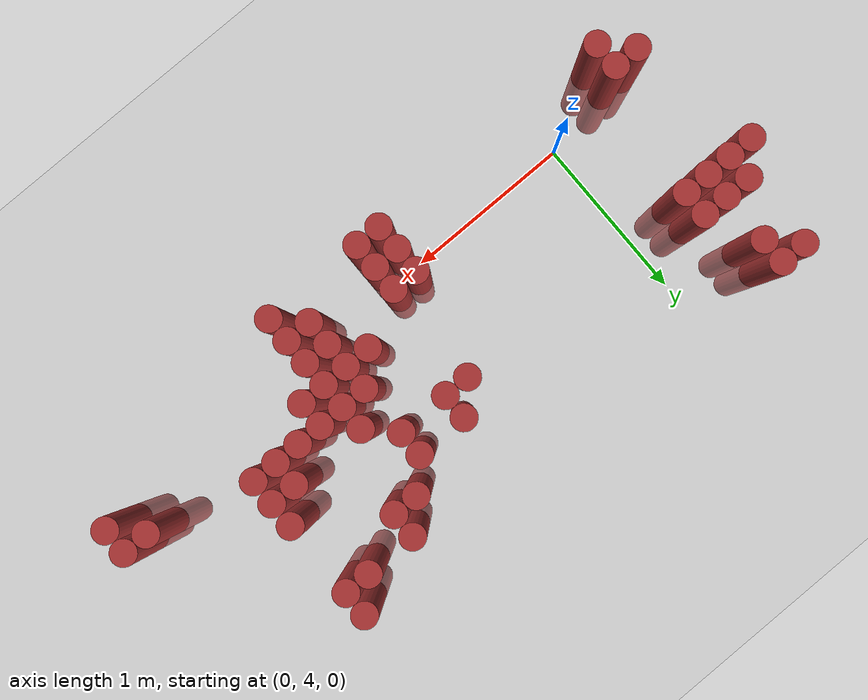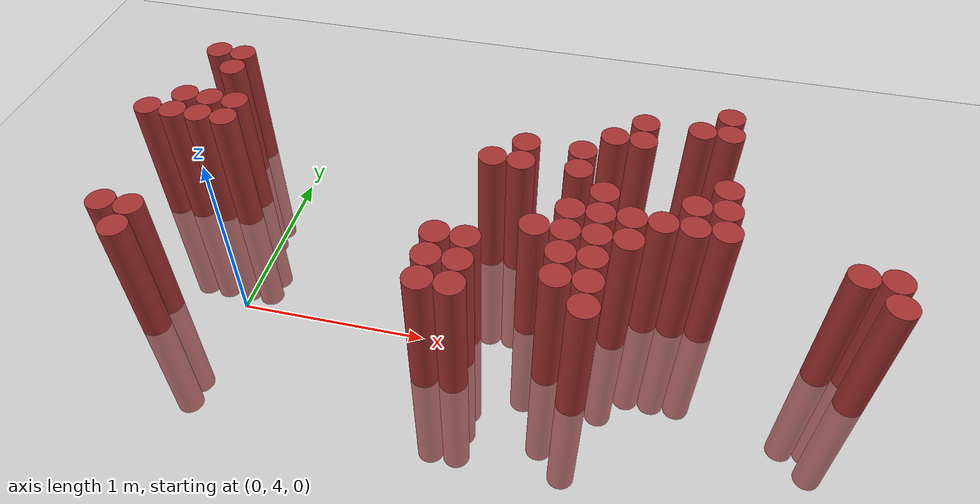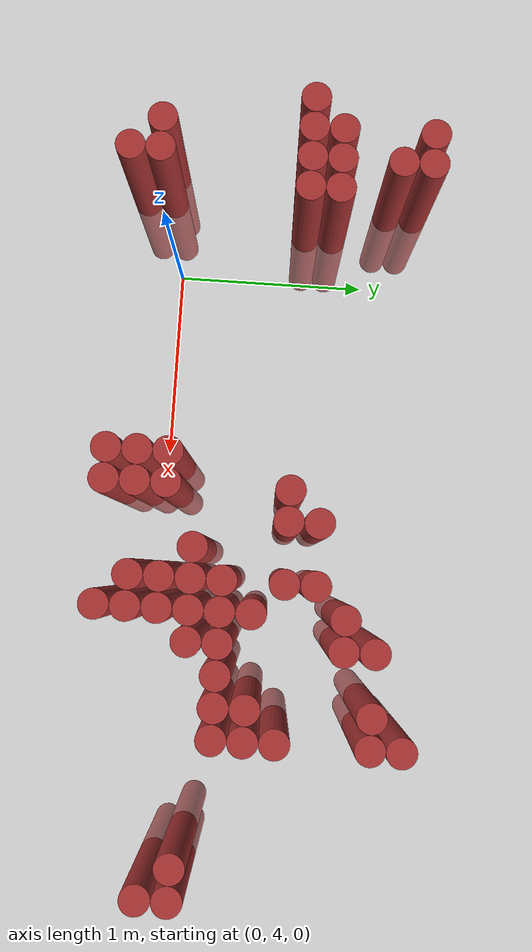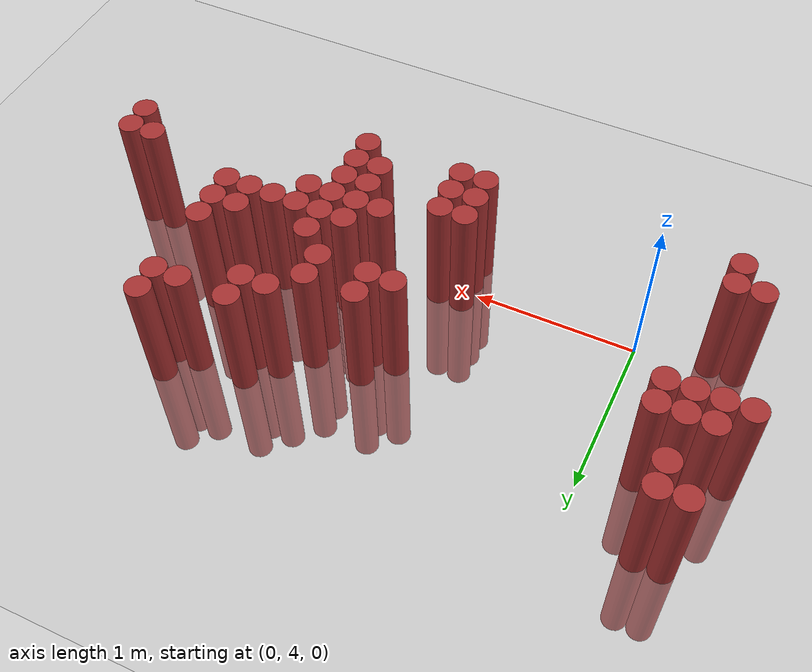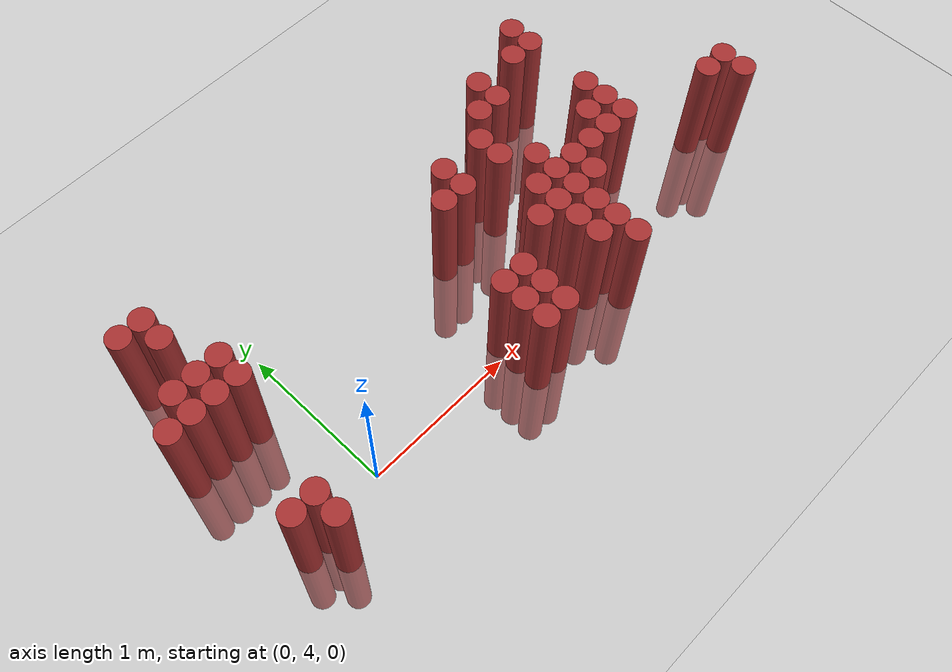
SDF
<sdf version="1.6">
 <world name="default">
  <model name="ground_plane">
   <static>1</static>
   <link name="link">
    <collision name="collision">
     <geometry><plane><normal>0 0 1</normal><size>100 100</size></plane></geometry>
     <surface><friction><ode><mu>100</mu><mu2>50</mu2></ode></friction></surface>
    </collision>
    <visual name="visual">
     <cast_shadows>0</cast_shadows>
     <geometry><plane><normal>0 0 1</normal><size>100 100</size></plane></geometry>
     <material>
      <script><uri>file://media/materials/scripts/gazebo.material</uri><name>Gazebo/Grey</name></script>
     </material>
    </visual>
   </link>
  </model>
  <model name="unit_cylinder_448">
   <static>1</static>
   <pose>-0.725000 4.675000 0.000000 0.000000 0.000000 0.000000</pose>
   <link name="link">
    <inertial>
     <mass>1</mass>
     <inertia><ixx>0.145833</ixx><ixy>0</ixy><ixz>0</ixz><iyy>0.145833</iyy><iyz>0</iyz><izz>0.125</izz></inertia>
    </inertial>
    <collision name="collision">
     <geometry><cylinder><radius>0.075000</radius><length>1.5</length></cylinder></geometry>
    </collision>
    <visual name="visual">
     <geometry><cylinder><radius>0.075000</radius><length>1.5</length></cylinder></geometry>
     <material>
      <ambient>0.648000 0.192000 0.192000 1</ambient>
      <diffuse>0.648000 0.192000 0.192000 1</diffuse>
     </material>
     <material>
      <script><name>Gazebo/Grey</name><uri>file://media/materials/scripts/gazebo.material</uri></script>
     </material>
    </visual>
   </link>
  </model>
  <model name="unit_cylinder_450">
   <static>1</static>
   <pose>-0.575000 3.925000 0.000000 0.000000 0.000000 0.000000</pose>
   <link name="link">
    <inertial>
     <mass>1</mass>
     <inertia><ixx>0.145833</ixx><ixy>0</ixy><ixz>0</ixz><iyy>0.145833</iyy><iyz>0</iyz><izz>0.125</izz></inertia>
    </inertial>
    <collision name="collision">
     <geometry><cylinder><radius>0.075000</radius><length>1.5</length></cylinder></geometry>
    </collision>
    <visual name="visual">
     <geometry><cylinder><radius>0.075000</radius><length>1.5</length></cylinder></geometry>
     <material>
      <ambient>0.648000 0.192000 0.192000 1</ambient>
      <diffuse>0.648000 0.192000 0.192000 1</diffuse>
     </material>
     <material>
      <script><name>Gazebo/Grey</name><uri>file://media/materials/scripts/gazebo.material</uri></script>
     </material>
    </visual>
   </link>
  </model>
  <model name="unit_cylinder_451">
   <static>1</static>
   <pose>-0.575000 4.675000 0.000000 0.000000 0.000000 0.000000</pose>
   <link name="link">
    <inertial>
     <mass>1</mass>
     <inertia><ixx>0.145833</ixx><ixy>0</ixy><ixz>0</ixz><iyy>0.145833</iyy><iyz>0</iyz><izz>0.125</izz></inertia>
    </inertial>
    <collision name="collision">
     <geometry><cylinder><radius>0.075000</radius><length>1.5</length></cylinder></geometry>
    </collision>
    <visual name="visual">
     <geometry><cylinder><radius>0.075000</radius><length>1.5</length></cylinder></geometry>
     <material>
      <ambient>0.648000 0.192000 0.192000 1</ambient>
      <diffuse>0.648000 0.192000 0.192000 1</diffuse>
     </material>
     <material>
      <script><name>Gazebo/Grey</name><uri>file://media/materials/scripts/gazebo.material</uri></script>
     </material>
    </visual>
   </link>
  </model>
  <model name="unit_cylinder_452">
   <static>1</static>
   <pose>-0.575000 4.825000 0.000000 0.000000 0.000000 0.000000</pose>
   <link name="link">
    <inertial>
     <mass>1</mass>
     <inertia><ixx>0.145833</ixx><ixy>0</ixy><ixz>0</ixz><iyy>0.145833</iyy><iyz>0</iyz><izz>0.125</izz></inertia>
    </inertial>
    <collision name="collision">
     <geometry><cylinder><radius>0.075000</radius><length>1.5</length></cylinder></geometry>
    </collision>
    <visual name="visual">
     <geometry><cylinder><radius>0.075000</radius><length>1.5</length></cylinder></geometry>
     <material>
      <ambient>0.648000 0.192000 0.192000 1</ambient>
      <diffuse>0.648000 0.192000 0.192000 1</diffuse>
     </material>
     <material>
      <script><name>Gazebo/Grey</name><uri>file://media/materials/scripts/gazebo.material</uri></script>
     </material>
    </visual>
   </link>
  </model>
  <model name="unit_cylinder_453">
   <static>1</static>
   <pose>-0.575000 5.275000 0.000000 0.000000 0.000000 0.000000</pose>
   <link name="link">
    <inertial>
     <mass>1</mass>
     <inertia><ixx>0.145833</ixx><ixy>0</ixy><ixz>0</ixz><iyy>0.145833</iyy><iyz>0</iyz><izz>0.125</izz></inertia>
    </inertial>
    <collision name="collision">
     <geometry><cylinder><radius>0.075000</radius><length>1.5</length></cylinder></geometry>
    </collision>
    <visual name="visual">
     <geometry><cylinder><radius>0.075000</radius><length>1.5</length></cylinder></geometry>
     <material>
      <ambient>0.648000 0.192000 0.192000 1</ambient>
      <diffuse>0.648000 0.192000 0.192000 1</diffuse>
     </material>
     <material>
      <script><name>Gazebo/Grey</name><uri>file://media/materials/scripts/gazebo.material</uri></script>
     </material>
    </visual>
   </link>
  </model>
  <model name="unit_cylinder_454">
   <static>1</static>
   <pose>-0.425000 3.775000 0.000000 0.000000 0.000000 0.000000</pose>
   <link name="link">
    <inertial>
     <mass>1</mass>
     <inertia><ixx>0.145833</ixx><ixy>0</ixy><ixz>0</ixz><iyy>0.145833</iyy><iyz>0</iyz><izz>0.125</izz></inertia>
    </inertial>
    <collision name="collision">
     <geometry><cylinder><radius>0.075000</radius><length>1.5</length></cylinder></geometry>
    </collision>
    <visual name="visual">
     <geometry><cylinder><radius>0.075000</radius><length>1.5</length></cylinder></geometry>
     <material>
      <ambient>0.648000 0.192000 0.192000 1</ambient>
      <diffuse>0.648000 0.192000 0.192000 1</diffuse>
     </material>
     <material>
      <script><name>Gazebo/Grey</name><uri>file://media/materials/scripts/gazebo.material</uri></script>
     </material>
    </visual>
   </link>
  </model>
  <model name="unit_cylinder_455">
   <static>1</static>
   <pose>-0.425000 3.925000 0.000000 0.000000 0.000000 0.000000</pose>
   <link name="link">
    <inertial>
     <mass>1</mass>
     <inertia><ixx>0.145833</ixx><ixy>0</ixy><ixz>0</ixz><iyy>0.145833</iyy><iyz>0</iyz><izz>0.125</izz></inertia>
    </inertial>
    <collision name="collision">
     <geometry><cylinder><radius>0.075000</radius><length>1.5</length></cylinder></geometry>
    </collision>
    <visual name="visual">
     <geometry><cylinder><radius>0.075000</radius><length>1.5</length></cylinder></geometry>
     <material>
      <ambient>0.648000 0.192000 0.192000 1</ambient>
      <diffuse>0.648000 0.192000 0.192000 1</diffuse>
     </material>
     <material>
      <script><name>Gazebo/Grey</name><uri>file://media/materials/scripts/gazebo.material</uri></script>
     </material>
    </visual>
   </link>
  </model>
  <model name="unit_cylinder_456">
   <static>1</static>
   <pose>-0.425000 4.675000 0.000000 0.000000 0.000000 0.000000</pose>
   <link name="link">
    <inertial>
     <mass>1</mass>
     <inertia><ixx>0.145833</ixx><ixy>0</ixy><ixz>0</ixz><iyy>0.145833</iyy><iyz>0</iyz><izz>0.125</izz></inertia>
    </inertial>
    <collision name="collision">
     <geometry><cylinder><radius>0.075000</radius><length>1.5</length></cylinder></geometry>
    </collision>
    <visual name="visual">
     <geometry><cylinder><radius>0.075000</radius><length>1.5</length></cylinder></geometry>
     <material>
      <ambient>0.648000 0.192000 0.192000 1</ambient>
      <diffuse>0.648000 0.192000 0.192000 1</diffuse>
     </material>
     <material>
      <script><name>Gazebo/Grey</name><uri>file://media/materials/scripts/gazebo.material</uri></script>
     </material>
    </visual>
   </link>
  </model>
  <model name="unit_cylinder_457">
   <static>1</static>
   <pose>-0.425000 4.825000 0.000000 0.000000 0.000000 0.000000</pose>
   <link name="link">
    <inertial>
     <mass>1</mass>
     <inertia><ixx>0.145833</ixx><ixy>0</ixy><ixz>0</ixz><iyy>0.145833</iyy><iyz>0</iyz><izz>0.125</izz></inertia>
    </inertial>
    <collision name="collision">
     <geometry><cylinder><radius>0.075000</radius><length>1.5</length></cylinder></geometry>
    </collision>
    <visual name="visual">
     <geometry><cylinder><radius>0.075000</radius><length>1.5</length></cylinder></geometry>
     <material>
      <ambient>0.648000 0.192000 0.192000 1</ambient>
      <diffuse>0.648000 0.192000 0.192000 1</diffuse>
     </material>
     <material>
      <script><name>Gazebo/Grey</name><uri>file://media/materials/scripts/gazebo.material</uri></script>
     </material>
    </visual>
   </link>
  </model>
  <model name="unit_cylinder_458">
   <static>1</static>
   <pose>-0.425000 5.125000 0.000000 0.000000 0.000000 0.000000</pose>
   <link name="link">
    <inertial>
     <mass>1</mass>
     <inertia><ixx>0.145833</ixx><ixy>0</ixy><ixz>0</ixz><iyy>0.145833</iyy><iyz>0</iyz><izz>0.125</izz></inertia>
    </inertial>
    <collision name="collision">
     <geometry><cylinder><radius>0.075000</radius><length>1.5</length></cylinder></geometry>
    </collision>
    <visual name="visual">
     <geometry><cylinder><radius>0.075000</radius><length>1.5</length></cylinder></geometry>
     <material>
      <ambient>0.648000 0.192000 0.192000 1</ambient>
      <diffuse>0.648000 0.192000 0.192000 1</diffuse>
     </material>
     <material>
      <script><name>Gazebo/Grey</name><uri>file://media/materials/scripts/gazebo.material</uri></script>
     </material>
    </visual>
   </link>
  </model>
  <model name="unit_cylinder_459">
   <static>1</static>
   <pose>-0.425000 5.275000 0.000000 0.000000 0.000000 0.000000</pose>
   <link name="link">
    <inertial>
     <mass>1</mass>
     <inertia><ixx>0.145833</ixx><ixy>0</ixy><ixz>0</ixz><iyy>0.145833</iyy><iyz>0</iyz><izz>0.125</izz></inertia>
    </inertial>
    <collision name="collision">
     <geometry><cylinder><radius>0.075000</radius><length>1.5</length></cylinder></geometry>
    </collision>
    <visual name="visual">
     <geometry><cylinder><radius>0.075000</radius><length>1.5</length></cylinder></geometry>
     <material>
      <ambient>0.648000 0.192000 0.192000 1</ambient>
      <diffuse>0.648000 0.192000 0.192000 1</diffuse>
     </material>
     <material>
      <script><name>Gazebo/Grey</name><uri>file://media/materials/scripts/gazebo.material</uri></script>
     </material>
    </visual>
   </link>
  </model>
  <model name="unit_cylinder_460">
   <static>1</static>
   <pose>-0.275000 4.675000 0.000000 0.000000 0.000000 0.000000</pose>
   <link name="link">
    <inertial>
     <mass>1</mass>
     <inertia><ixx>0.145833</ixx><ixy>0</ixy><ixz>0</ixz><iyy>0.145833</iyy><iyz>0</iyz><izz>0.125</izz></inertia>
    </inertial>
    <collision name="collision">
     <geometry><cylinder><radius>0.075000</radius><length>1.5</length></cylinder></geometry>
    </collision>
    <visual name="visual">
     <geometry><cylinder><radius>0.075000</radius><length>1.5</length></cylinder></geometry>
     <material>
      <ambient>0.648000 0.192000 0.192000 1</ambient>
      <diffuse>0.648000 0.192000 0.192000 1</diffuse>
     </material>
     <material>
      <script><name>Gazebo/Grey</name><uri>file://media/materials/scripts/gazebo.material</uri></script>
     </material>
    </visual>
   </link>
  </model>
  <model name="unit_cylinder_461">
   <static>1</static>
   <pose>-0.275000 4.825000 0.000000 0.000000 0.000000 0.000000</pose>
   <link name="link">
    <inertial>
     <mass>1</mass>
     <inertia><ixx>0.145833</ixx><ixy>0</ixy><ixz>0</ixz><iyy>0.145833</iyy><iyz>0</iyz><izz>0.125</izz></inertia>
    </inertial>
    <collision name="collision">
     <geometry><cylinder><radius>0.075000</radius><length>1.5</length></cylinder></geometry>
    </collision>
    <visual name="visual">
     <geometry><cylinder><radius>0.075000</radius><length>1.5</length></cylinder></geometry>
     <material>
      <ambient>0.648000 0.192000 0.192000 1</ambient>
      <diffuse>0.648000 0.192000 0.192000 1</diffuse>
     </material>
     <material>
      <script><name>Gazebo/Grey</name><uri>file://media/materials/scripts/gazebo.material</uri></script>
     </material>
    </visual>
   </link>
  </model>
  <model name="unit_cylinder_482">
   <static>1</static>
   <pose>1.075000 3.775000 0.000000 0.000000 0.000000 0.000000</pose>
   <link name="link">
    <inertial>
     <mass>1</mass>
     <inertia><ixx>0.145833</ixx><ixy>0</ixy><ixz>0</ixz><iyy>0.145833</iyy><iyz>0</iyz><izz>0.125</izz></inertia>
    </inertial>
    <collision name="collision">
     <geometry><cylinder><radius>0.075000</radius><length>1.5</length></cylinder></geometry>
    </collision>
    <visual name="visual">
     <geometry><cylinder><radius>0.075000</radius><length>1.5</length></cylinder></geometry>
     <material>
      <ambient>0.648000 0.192000 0.192000 1</ambient>
      <diffuse>0.648000 0.192000 0.192000 1</diffuse>
     </material>
     <material>
      <script><name>Gazebo/Grey</name><uri>file://media/materials/scripts/gazebo.material</uri></script>
     </material>
    </visual>
   </link>
  </model>
  <model name="unit_cylinder_483">
   <static>1</static>
   <pose>1.075000 3.925000 0.000000 0.000000 0.000000 0.000000</pose>
   <link name="link">
    <inertial>
     <mass>1</mass>
     <inertia><ixx>0.145833</ixx><ixy>0</ixy><ixz>0</ixz><iyy>0.145833</iyy><iyz>0</iyz><izz>0.125</izz></inertia>
    </inertial>
    <collision name="collision">
     <geometry><cylinder><radius>0.075000</radius><length>1.5</length></cylinder></geometry>
    </collision>
    <visual name="visual">
     <geometry><cylinder><radius>0.075000</radius><length>1.5</length></cylinder></geometry>
     <material>
      <ambient>0.648000 0.192000 0.192000 1</ambient>
      <diffuse>0.648000 0.192000 0.192000 1</diffuse>
     </material>
     <material>
      <script><name>Gazebo/Grey</name><uri>file://media/materials/scripts/gazebo.material</uri></script>
     </material>
    </visual>
   </link>
  </model>
  <model name="unit_cylinder_484">
   <static>1</static>
   <pose>1.075000 4.075000 0.000000 0.000000 0.000000 0.000000</pose>
   <link name="link">
    <inertial>
     <mass>1</mass>
     <inertia><ixx>0.145833</ixx><ixy>0</ixy><ixz>0</ixz><iyy>0.145833</iyy><iyz>0</iyz><izz>0.125</izz></inertia>
    </inertial>
    <collision name="collision">
     <geometry><cylinder><radius>0.075000</radius><length>1.5</length></cylinder></geometry>
    </collision>
    <visual name="visual">
     <geometry><cylinder><radius>0.075000</radius><length>1.5</length></cylinder></geometry>
     <material>
      <ambient>0.648000 0.192000 0.192000 1</ambient>
      <diffuse>0.648000 0.192000 0.192000 1</diffuse>
     </material>
     <material>
      <script><name>Gazebo/Grey</name><uri>file://media/materials/scripts/gazebo.material</uri></script>
     </material>
    </visual>
   </link>
  </model>
  <model name="unit_cylinder_491">
   <static>1</static>
   <pose>1.225000 3.775000 0.000000 0.000000 0.000000 0.000000</pose>
   <link name="link">
    <inertial>
     <mass>1</mass>
     <inertia><ixx>0.145833</ixx><ixy>0</ixy><ixz>0</ixz><iyy>0.145833</iyy><iyz>0</iyz><izz>0.125</izz></inertia>
    </inertial>
    <collision name="collision">
     <geometry><cylinder><radius>0.075000</radius><length>1.5</length></cylinder></geometry>
    </collision>
    <visual name="visual">
     <geometry><cylinder><radius>0.075000</radius><length>1.5</length></cylinder></geometry>
     <material>
      <ambient>0.648000 0.192000 0.192000 1</ambient>
      <diffuse>0.648000 0.192000 0.192000 1</diffuse>
     </material>
     <material>
      <script><name>Gazebo/Grey</name><uri>file://media/materials/scripts/gazebo.material</uri></script>
     </material>
    </visual>
   </link>
  </model>
  <model name="unit_cylinder_492">
   <static>1</static>
   <pose>1.225000 3.925000 0.000000 0.000000 0.000000 0.000000</pose>
   <link name="link">
    <inertial>
     <mass>1</mass>
     <inertia><ixx>0.145833</ixx><ixy>0</ixy><ixz>0</ixz><iyy>0.145833</iyy><iyz>0</iyz><izz>0.125</izz></inertia>
    </inertial>
    <collision name="collision">
     <geometry><cylinder><radius>0.075000</radius><length>1.5</length></cylinder></geometry>
    </collision>
    <visual name="visual">
     <geometry><cylinder><radius>0.075000</radius><length>1.5</length></cylinder></geometry>
     <material>
      <ambient>0.648000 0.192000 0.192000 1</ambient>
      <diffuse>0.648000 0.192000 0.192000 1</diffuse>
     </material>
     <material>
      <script><name>Gazebo/Grey</name><uri>file://media/materials/scripts/gazebo.material</uri></script>
     </material>
    </visual>
   </link>
  </model>
  <model name="unit_cylinder_493">
   <static>1</static>
   <pose>1.225000 4.075000 0.000000 0.000000 0.000000 0.000000</pose>
   <link name="link">
    <inertial>
     <mass>1</mass>
     <inertia><ixx>0.145833</ixx><ixy>0</ixy><ixz>0</ixz><iyy>0.145833</iyy><iyz>0</iyz><izz>0.125</izz></inertia>
    </inertial>
    <collision name="collision">
     <geometry><cylinder><radius>0.075000</radius><length>1.5</length></cylinder></geometry>
    </collision>
    <visual name="visual">
     <geometry><cylinder><radius>0.075000</radius><length>1.5</length></cylinder></geometry>
     <material>
      <ambient>0.648000 0.192000 0.192000 1</ambient>
      <diffuse>0.648000 0.192000 0.192000 1</diffuse>
     </material>
     <material>
      <script><name>Gazebo/Grey</name><uri>file://media/materials/scripts/gazebo.material</uri></script>
     </material>
    </visual>
   </link>
  </model>
  <model name="unit_cylinder_494">
   <static>1</static>
   <pose>1.225000 4.675000 0.000000 0.000000 0.000000 0.000000</pose>
   <link name="link">
    <inertial>
     <mass>1</mass>
     <inertia><ixx>0.145833</ixx><ixy>0</ixy><ixz>0</ixz><iyy>0.145833</iyy><iyz>0</iyz><izz>0.125</izz></inertia>
    </inertial>
    <collision name="collision">
     <geometry><cylinder><radius>0.075000</radius><length>1.5</length></cylinder></geometry>
    </collision>
    <visual name="visual">
     <geometry><cylinder><radius>0.075000</radius><length>1.5</length></cylinder></geometry>
     <material>
      <ambient>0.648000 0.192000 0.192000 1</ambient>
      <diffuse>0.648000 0.192000 0.192000 1</diffuse>
     </material>
     <material>
      <script><name>Gazebo/Grey</name><uri>file://media/materials/scripts/gazebo.material</uri></script>
     </material>
    </visual>
   </link>
  </model>
  <model name="unit_cylinder_499">
   <static>1</static>
   <pose>1.375000 4.675000 0.000000 0.000000 0.000000 0.000000</pose>
   <link name="link">
    <inertial>
     <mass>1</mass>
     <inertia><ixx>0.145833</ixx><ixy>0</ixy><ixz>0</ixz><iyy>0.145833</iyy><iyz>0</iyz><izz>0.125</izz></inertia>
    </inertial>
    <collision name="collision">
     <geometry><cylinder><radius>0.075000</radius><length>1.5</length></cylinder></geometry>
    </collision>
    <visual name="visual">
     <geometry><cylinder><radius>0.075000</radius><length>1.5</length></cylinder></geometry>
     <material>
      <ambient>0.648000 0.192000 0.192000 1</ambient>
      <diffuse>0.648000 0.192000 0.192000 1</diffuse>
     </material>
     <material>
      <script><name>Gazebo/Grey</name><uri>file://media/materials/scripts/gazebo.material</uri></script>
     </material>
    </visual>
   </link>
  </model>
  <model name="unit_cylinder_500">
   <static>1</static>
   <pose>1.375000 4.825000 0.000000 0.000000 0.000000 0.000000</pose>
   <link name="link">
    <inertial>
     <mass>1</mass>
     <inertia><ixx>0.145833</ixx><ixy>0</ixy><ixz>0</ixz><iyy>0.145833</iyy><iyz>0</iyz><izz>0.125</izz></inertia>
    </inertial>
    <collision name="collision">
     <geometry><cylinder><radius>0.075000</radius><length>1.5</length></cylinder></geometry>
    </collision>
    <visual name="visual">
     <geometry><cylinder><radius>0.075000</radius><length>1.5</length></cylinder></geometry>
     <material>
      <ambient>0.648000 0.192000 0.192000 1</ambient>
      <diffuse>0.648000 0.192000 0.192000 1</diffuse>
     </material>
     <material>
      <script><name>Gazebo/Grey</name><uri>file://media/materials/scripts/gazebo.material</uri></script>
     </material>
    </visual>
   </link>
  </model>
  <model name="unit_cylinder_505">
   <static>1</static>
   <pose>1.525000 4.225000 0.000000 0.000000 0.000000 0.000000</pose>
   <link name="link">
    <inertial>
     <mass>1</mass>
     <inertia><ixx>0.145833</ixx><ixy>0</ixy><ixz>0</ixz><iyy>0.145833</iyy><iyz>0</iyz><izz>0.125</izz></inertia>
    </inertial>
    <collision name="collision">
     <geometry><cylinder><radius>0.075000</radius><length>1.5</length></cylinder></geometry>
    </collision>
    <visual name="visual">
     <geometry><cylinder><radius>0.075000</radius><length>1.5</length></cylinder></geometry>
     <material>
      <ambient>0.648000 0.192000 0.192000 1</ambient>
      <diffuse>0.648000 0.192000 0.192000 1</diffuse>
     </material>
     <material>
      <script><name>Gazebo/Grey</name><uri>file://media/materials/scripts/gazebo.material</uri></script>
     </material>
    </visual>
   </link>
  </model>
  <model name="unit_cylinder_511">
   <static>1</static>
   <pose>1.675000 3.925000 0.000000 0.000000 0.000000 0.000000</pose>
   <link name="link">
    <inertial>
     <mass>1</mass>
     <inertia><ixx>0.145833</ixx><ixy>0</ixy><ixz>0</ixz><iyy>0.145833</iyy><iyz>0</iyz><izz>0.125</izz></inertia>
    </inertial>
    <collision name="collision">
     <geometry><cylinder><radius>0.075000</radius><length>1.5</length></cylinder></geometry>
    </collision>
    <visual name="visual">
     <geometry><cylinder><radius>0.075000</radius><length>1.5</length></cylinder></geometry>
     <material>
      <ambient>0.648000 0.192000 0.192000 1</ambient>
      <diffuse>0.648000 0.192000 0.192000 1</diffuse>
     </material>
     <material>
      <script><name>Gazebo/Grey</name><uri>file://media/materials/scripts/gazebo.material</uri></script>
     </material>
    </visual>
   </link>
  </model>
  <model name="unit_cylinder_512">
   <static>1</static>
   <pose>1.675000 4.075000 0.000000 0.000000 0.000000 0.000000</pose>
   <link name="link">
    <inertial>
     <mass>1</mass>
     <inertia><ixx>0.145833</ixx><ixy>0</ixy><ixz>0</ixz><iyy>0.145833</iyy><iyz>0</iyz><izz>0.125</izz></inertia>
    </inertial>
    <collision name="collision">
     <geometry><cylinder><radius>0.075000</radius><length>1.5</length></cylinder></geometry>
    </collision>
    <visual name="visual">
     <geometry><cylinder><radius>0.075000</radius><length>1.5</length></cylinder></geometry>
     <material>
      <ambient>0.648000 0.192000 0.192000 1</ambient>
      <diffuse>0.648000 0.192000 0.192000 1</diffuse>
     </material>
     <material>
      <script><name>Gazebo/Grey</name><uri>file://media/materials/scripts/gazebo.material</uri></script>
     </material>
    </visual>
   </link>
  </model>
  <model name="unit_cylinder_513">
   <static>1</static>
   <pose>1.675000 4.225000 0.000000 0.000000 0.000000 0.000000</pose>
   <link name="link">
    <inertial>
     <mass>1</mass>
     <inertia><ixx>0.145833</ixx><ixy>0</ixy><ixz>0</ixz><iyy>0.145833</iyy><iyz>0</iyz><izz>0.125</izz></inertia>
    </inertial>
    <collision name="collision">
     <geometry><cylinder><radius>0.075000</radius><length>1.5</length></cylinder></geometry>
    </collision>
    <visual name="visual">
     <geometry><cylinder><radius>0.075000</radius><length>1.5</length></cylinder></geometry>
     <material>
      <ambient>0.648000 0.192000 0.192000 1</ambient>
      <diffuse>0.648000 0.192000 0.192000 1</diffuse>
     </material>
     <material>
      <script><name>Gazebo/Grey</name><uri>file://media/materials/scripts/gazebo.material</uri></script>
     </material>
    </visual>
   </link>
  </model>
  <model name="unit_cylinder_514">
   <static>1</static>
   <pose>1.675000 4.375000 0.000000 0.000000 0.000000 0.000000</pose>
   <link name="link">
    <inertial>
     <mass>1</mass>
     <inertia><ixx>0.145833</ixx><ixy>0</ixy><ixz>0</ixz><iyy>0.145833</iyy><iyz>0</iyz><izz>0.125</izz></inertia>
    </inertial>
    <collision name="collision">
     <geometry><cylinder><radius>0.075000</radius><length>1.5</length></cylinder></geometry>
    </collision>
    <visual name="visual">
     <geometry><cylinder><radius>0.075000</radius><length>1.5</length></cylinder></geometry>
     <material>
      <ambient>0.648000 0.192000 0.192000 1</ambient>
      <diffuse>0.648000 0.192000 0.192000 1</diffuse>
     </material>
     <material>
      <script><name>Gazebo/Grey</name><uri>file://media/materials/scripts/gazebo.material</uri></script>
     </material>
    </visual>
   </link>
  </model>
  <model name="unit_cylinder_515">
   <static>1</static>
   <pose>1.675000 4.675000 0.000000 0.000000 0.000000 0.000000</pose>
   <link name="link">
    <inertial>
     <mass>1</mass>
     <inertia><ixx>0.145833</ixx><ixy>0</ixy><ixz>0</ixz><iyy>0.145833</iyy><iyz>0</iyz><izz>0.125</izz></inertia>
    </inertial>
    <collision name="collision">
     <geometry><cylinder><radius>0.075000</radius><length>1.5</length></cylinder></geometry>
    </collision>
    <visual name="visual">
     <geometry><cylinder><radius>0.075000</radius><length>1.5</length></cylinder></geometry>
     <material>
      <ambient>0.648000 0.192000 0.192000 1</ambient>
      <diffuse>0.648000 0.192000 0.192000 1</diffuse>
     </material>
     <material>
      <script><name>Gazebo/Grey</name><uri>file://media/materials/scripts/gazebo.material</uri></script>
     </material>
    </visual>
   </link>
  </model>
  <model name="unit_cylinder_516">
   <static>1</static>
   <pose>1.675000 4.825000 0.000000 0.000000 0.000000 0.000000</pose>
   <link name="link">
    <inertial>
     <mass>1</mass>
     <inertia><ixx>0.145833</ixx><ixy>0</ixy><ixz>0</ixz><iyy>0.145833</iyy><iyz>0</iyz><izz>0.125</izz></inertia>
    </inertial>
    <collision name="collision">
     <geometry><cylinder><radius>0.075000</radius><length>1.5</length></cylinder></geometry>
    </collision>
    <visual name="visual">
     <geometry><cylinder><radius>0.075000</radius><length>1.5</length></cylinder></geometry>
     <material>
      <ambient>0.648000 0.192000 0.192000 1</ambient>
      <diffuse>0.648000 0.192000 0.192000 1</diffuse>
     </material>
     <material>
      <script><name>Gazebo/Grey</name><uri>file://media/materials/scripts/gazebo.material</uri></script>
     </material>
    </visual>
   </link>
  </model>
  <model name="unit_cylinder_520">
   <static>1</static>
   <pose>1.825000 3.775000 0.000000 0.000000 0.000000 0.000000</pose>
   <link name="link">
    <inertial>
     <mass>1</mass>
     <inertia><ixx>0.145833</ixx><ixy>0</ixy><ixz>0</ixz><iyy>0.145833</iyy><iyz>0</iyz><izz>0.125</izz></inertia>
    </inertial>
    <collision name="collision">
     <geometry><cylinder><radius>0.075000</radius><length>1.5</length></cylinder></geometry>
    </collision>
    <visual name="visual">
     <geometry><cylinder><radius>0.075000</radius><length>1.5</length></cylinder></geometry>
     <material>
      <ambient>0.648000 0.192000 0.192000 1</ambient>
      <diffuse>0.648000 0.192000 0.192000 1</diffuse>
     </material>
     <material>
      <script><name>Gazebo/Grey</name><uri>file://media/materials/scripts/gazebo.material</uri></script>
     </material>
    </visual>
   </link>
  </model>
  <model name="unit_cylinder_521">
   <static>1</static>
   <pose>1.825000 3.925000 0.000000 0.000000 0.000000 0.000000</pose>
   <link name="link">
    <inertial>
     <mass>1</mass>
     <inertia><ixx>0.145833</ixx><ixy>0</ixy><ixz>0</ixz><iyy>0.145833</iyy><iyz>0</iyz><izz>0.125</izz></inertia>
    </inertial>
    <collision name="collision">
     <geometry><cylinder><radius>0.075000</radius><length>1.5</length></cylinder></geometry>
    </collision>
    <visual name="visual">
     <geometry><cylinder><radius>0.075000</radius><length>1.5</length></cylinder></geometry>
     <material>
      <ambient>0.648000 0.192000 0.192000 1</ambient>
      <diffuse>0.648000 0.192000 0.192000 1</diffuse>
     </material>
     <material>
      <script><name>Gazebo/Grey</name><uri>file://media/materials/scripts/gazebo.material</uri></script>
     </material>
    </visual>
   </link>
  </model>
  <model name="unit_cylinder_522">
   <static>1</static>
   <pose>1.825000 4.075000 0.000000 0.000000 0.000000 0.000000</pose>
   <link name="link">
    <inertial>
     <mass>1</mass>
     <inertia><ixx>0.145833</ixx><ixy>0</ixy><ixz>0</ixz><iyy>0.145833</iyy><iyz>0</iyz><izz>0.125</izz></inertia>
    </inertial>
    <collision name="collision">
     <geometry><cylinder><radius>0.075000</radius><length>1.5</length></cylinder></geometry>
    </collision>
    <visual name="visual">
     <geometry><cylinder><radius>0.075000</radius><length>1.5</length></cylinder></geometry>
     <material>
      <ambient>0.648000 0.192000 0.192000 1</ambient>
      <diffuse>0.648000 0.192000 0.192000 1</diffuse>
     </material>
     <material>
      <script><name>Gazebo/Grey</name><uri>file://media/materials/scripts/gazebo.material</uri></script>
     </material>
    </visual>
   </link>
  </model>
  <model name="unit_cylinder_523">
   <static>1</static>
   <pose>1.825000 4.225000 0.000000 0.000000 0.000000 0.000000</pose>
   <link name="link">
    <inertial>
     <mass>1</mass>
     <inertia><ixx>0.145833</ixx><ixy>0</ixy><ixz>0</ixz><iyy>0.145833</iyy><iyz>0</iyz><izz>0.125</izz></inertia>
    </inertial>
    <collision name="collision">
     <geometry><cylinder><radius>0.075000</radius><length>1.5</length></cylinder></geometry>
    </collision>
    <visual name="visual">
     <geometry><cylinder><radius>0.075000</radius><length>1.5</length></cylinder></geometry>
     <material>
      <ambient>0.648000 0.192000 0.192000 1</ambient>
      <diffuse>0.648000 0.192000 0.192000 1</diffuse>
     </material>
     <material>
      <script><name>Gazebo/Grey</name><uri>file://media/materials/scripts/gazebo.material</uri></script>
     </material>
    </visual>
   </link>
  </model>
  <model name="unit_cylinder_524">
   <static>1</static>
   <pose>1.825000 4.375000 0.000000 0.000000 0.000000 0.000000</pose>
   <link name="link">
    <inertial>
     <mass>1</mass>
     <inertia><ixx>0.145833</ixx><ixy>0</ixy><ixz>0</ixz><iyy>0.145833</iyy><iyz>0</iyz><izz>0.125</izz></inertia>
    </inertial>
    <collision name="collision">
     <geometry><cylinder><radius>0.075000</radius><length>1.5</length></cylinder></geometry>
    </collision>
    <visual name="visual">
     <geometry><cylinder><radius>0.075000</radius><length>1.5</length></cylinder></geometry>
     <material>
      <ambient>0.648000 0.192000 0.192000 1</ambient>
      <diffuse>0.648000 0.192000 0.192000 1</diffuse>
     </material>
     <material>
      <script><name>Gazebo/Grey</name><uri>file://media/materials/scripts/gazebo.material</uri></script>
     </material>
    </visual>
   </link>
  </model>
  <model name="unit_cylinder_525">
   <static>1</static>
   <pose>1.825000 4.525000 0.000000 0.000000 0.000000 0.000000</pose>
   <link name="link">
    <inertial>
     <mass>1</mass>
     <inertia><ixx>0.145833</ixx><ixy>0</ixy><ixz>0</ixz><iyy>0.145833</iyy><iyz>0</iyz><izz>0.125</izz></inertia>
    </inertial>
    <collision name="collision">
     <geometry><cylinder><radius>0.075000</radius><length>1.5</length></cylinder></geometry>
    </collision>
    <visual name="visual">
     <geometry><cylinder><radius>0.075000</radius><length>1.5</length></cylinder></geometry>
     <material>
      <ambient>0.648000 0.192000 0.192000 1</ambient>
      <diffuse>0.648000 0.192000 0.192000 1</diffuse>
     </material>
     <material>
      <script><name>Gazebo/Grey</name><uri>file://media/materials/scripts/gazebo.material</uri></script>
     </material>
    </visual>
   </link>
  </model>
  <model name="unit_cylinder_526">
   <static>1</static>
   <pose>1.825000 4.975000 0.000000 0.000000 0.000000 0.000000</pose>
   <link name="link">
    <inertial>
     <mass>1</mass>
     <inertia><ixx>0.145833</ixx><ixy>0</ixy><ixz>0</ixz><iyy>0.145833</iyy><iyz>0</iyz><izz>0.125</izz></inertia>
    </inertial>
    <collision name="collision">
     <geometry><cylinder><radius>0.075000</radius><length>1.5</length></cylinder></geometry>
    </collision>
    <visual name="visual">
     <geometry><cylinder><radius>0.075000</radius><length>1.5</length></cylinder></geometry>
     <material>
      <ambient>0.648000 0.192000 0.192000 1</ambient>
      <diffuse>0.648000 0.192000 0.192000 1</diffuse>
     </material>
     <material>
      <script><name>Gazebo/Grey</name><uri>file://media/materials/scripts/gazebo.material</uri></script>
     </material>
    </visual>
   </link>
  </model>
  <model name="unit_cylinder_531">
   <static>1</static>
   <pose>1.975000 4.225000 0.000000 0.000000 0.000000 0.000000</pose>
   <link name="link">
    <inertial>
     <mass>1</mass>
     <inertia><ixx>0.145833</ixx><ixy>0</ixy><ixz>0</ixz><iyy>0.145833</iyy><iyz>0</iyz><izz>0.125</izz></inertia>
    </inertial>
    <collision name="collision">
     <geometry><cylinder><radius>0.075000</radius><length>1.5</length></cylinder></geometry>
    </collision>
    <visual name="visual">
     <geometry><cylinder><radius>0.075000</radius><length>1.5</length></cylinder></geometry>
     <material>
      <ambient>0.648000 0.192000 0.192000 1</ambient>
      <diffuse>0.648000 0.192000 0.192000 1</diffuse>
     </material>
     <material>
      <script><name>Gazebo/Grey</name><uri>file://media/materials/scripts/gazebo.material</uri></script>
     </material>
    </visual>
   </link>
  </model>
  <model name="unit_cylinder_532">
   <static>1</static>
   <pose>1.975000 4.375000 0.000000 0.000000 0.000000 0.000000</pose>
   <link name="link">
    <inertial>
     <mass>1</mass>
     <inertia><ixx>0.145833</ixx><ixy>0</ixy><ixz>0</ixz><iyy>0.145833</iyy><iyz>0</iyz><izz>0.125</izz></inertia>
    </inertial>
    <collision name="collision">
     <geometry><cylinder><radius>0.075000</radius><length>1.5</length></cylinder></geometry>
    </collision>
    <visual name="visual">
     <geometry><cylinder><radius>0.075000</radius><length>1.5</length></cylinder></geometry>
     <material>
      <ambient>0.648000 0.192000 0.192000 1</ambient>
      <diffuse>0.648000 0.192000 0.192000 1</diffuse>
     </material>
     <material>
      <script><name>Gazebo/Grey</name><uri>file://media/materials/scripts/gazebo.material</uri></script>
     </material>
    </visual>
   </link>
  </model>
  <model name="unit_cylinder_533">
   <static>1</static>
   <pose>1.975000 4.975000 0.000000 0.000000 0.000000 0.000000</pose>
   <link name="link">
    <inertial>
     <mass>1</mass>
     <inertia><ixx>0.145833</ixx><ixy>0</ixy><ixz>0</ixz><iyy>0.145833</iyy><iyz>0</iyz><izz>0.125</izz></inertia>
    </inertial>
    <collision name="collision">
     <geometry><cylinder><radius>0.075000</radius><length>1.5</length></cylinder></geometry>
    </collision>
    <visual name="visual">
     <geometry><cylinder><radius>0.075000</radius><length>1.5</length></cylinder></geometry>
     <material>
      <ambient>0.648000 0.192000 0.192000 1</ambient>
      <diffuse>0.648000 0.192000 0.192000 1</diffuse>
     </material>
     <material>
      <script><name>Gazebo/Grey</name><uri>file://media/materials/scripts/gazebo.material</uri></script>
     </material>
    </visual>
   </link>
  </model>
  <model name="unit_cylinder_534">
   <static>1</static>
   <pose>1.975000 5.125000 0.000000 0.000000 0.000000 0.000000</pose>
   <link name="link">
    <inertial>
     <mass>1</mass>
     <inertia><ixx>0.145833</ixx><ixy>0</ixy><ixz>0</ixz><iyy>0.145833</iyy><iyz>0</iyz><izz>0.125</izz></inertia>
    </inertial>
    <collision name="collision">
     <geometry><cylinder><radius>0.075000</radius><length>1.5</length></cylinder></geometry>
    </collision>
    <visual name="visual">
     <geometry><cylinder><radius>0.075000</radius><length>1.5</length></cylinder></geometry>
     <material>
      <ambient>0.648000 0.192000 0.192000 1</ambient>
      <diffuse>0.648000 0.192000 0.192000 1</diffuse>
     </material>
     <material>
      <script><name>Gazebo/Grey</name><uri>file://media/materials/scripts/gazebo.material</uri></script>
     </material>
    </visual>
   </link>
  </model>
  <model name="unit_cylinder_543">
   <static>1</static>
   <pose>2.125000 4.375000 0.000000 0.000000 0.000000 0.000000</pose>
   <link name="link">
    <inertial>
     <mass>1</mass>
     <inertia><ixx>0.145833</ixx><ixy>0</ixy><ixz>0</ixz><iyy>0.145833</iyy><iyz>0</iyz><izz>0.125</izz></inertia>
    </inertial>
    <collision name="collision">
     <geometry><cylinder><radius>0.075000</radius><length>1.5</length></cylinder></geometry>
    </collision>
    <visual name="visual">
     <geometry><cylinder><radius>0.075000</radius><length>1.5</length></cylinder></geometry>
     <material>
      <ambient>0.648000 0.192000 0.192000 1</ambient>
      <diffuse>0.648000 0.192000 0.192000 1</diffuse>
     </material>
     <material>
      <script><name>Gazebo/Grey</name><uri>file://media/materials/scripts/gazebo.material</uri></script>
     </material>
    </visual>
   </link>
  </model>
  <model name="unit_cylinder_550">
   <static>1</static>
   <pose>2.275000 4.375000 0.000000 0.000000 0.000000 0.000000</pose>
   <link name="link">
    <inertial>
     <mass>1</mass>
     <inertia><ixx>0.145833</ixx><ixy>0</ixy><ixz>0</ixz><iyy>0.145833</iyy><iyz>0</iyz><izz>0.125</izz></inertia>
    </inertial>
    <collision name="collision">
     <geometry><cylinder><radius>0.075000</radius><length>1.5</length></cylinder></geometry>
    </collision>
    <visual name="visual">
     <geometry><cylinder><radius>0.075000</radius><length>1.5</length></cylinder></geometry>
     <material>
      <ambient>0.648000 0.192000 0.192000 1</ambient>
      <diffuse>0.648000 0.192000 0.192000 1</diffuse>
     </material>
     <material>
      <script><name>Gazebo/Grey</name><uri>file://media/materials/scripts/gazebo.material</uri></script>
     </material>
    </visual>
   </link>
  </model>
  <model name="unit_cylinder_551">
   <static>1</static>
   <pose>2.275000 4.525000 0.000000 0.000000 0.000000 0.000000</pose>
   <link name="link">
    <inertial>
     <mass>1</mass>
     <inertia><ixx>0.145833</ixx><ixy>0</ixy><ixz>0</ixz><iyy>0.145833</iyy><iyz>0</iyz><izz>0.125</izz></inertia>
    </inertial>
    <collision name="collision">
     <geometry><cylinder><radius>0.075000</radius><length>1.5</length></cylinder></geometry>
    </collision>
    <visual name="visual">
     <geometry><cylinder><radius>0.075000</radius><length>1.5</length></cylinder></geometry>
     <material>
      <ambient>0.648000 0.192000 0.192000 1</ambient>
      <diffuse>0.648000 0.192000 0.192000 1</diffuse>
     </material>
     <material>
      <script><name>Gazebo/Grey</name><uri>file://media/materials/scripts/gazebo.material</uri></script>
     </material>
    </visual>
   </link>
  </model>
  <model name="unit_cylinder_552">
   <static>1</static>
   <pose>2.275000 5.125000 0.000000 0.000000 0.000000 0.000000</pose>
   <link name="link">
    <inertial>
     <mass>1</mass>
     <inertia><ixx>0.145833</ixx><ixy>0</ixy><ixz>0</ixz><iyy>0.145833</iyy><iyz>0</iyz><izz>0.125</izz></inertia>
    </inertial>
    <collision name="collision">
     <geometry><cylinder><radius>0.075000</radius><length>1.5</length></cylinder></geometry>
    </collision>
    <visual name="visual">
     <geometry><cylinder><radius>0.075000</radius><length>1.5</length></cylinder></geometry>
     <material>
      <ambient>0.648000 0.192000 0.192000 1</ambient>
      <diffuse>0.648000 0.192000 0.192000 1</diffuse>
     </material>
     <material>
      <script><name>Gazebo/Grey</name><uri>file://media/materials/scripts/gazebo.material</uri></script>
     </material>
    </visual>
   </link>
  </model>
  <model name="unit_cylinder_559">
   <static>1</static>
   <pose>2.425000 4.375000 0.000000 0.000000 0.000000 0.000000</pose>
   <link name="link">
    <inertial>
     <mass>1</mass>
     <inertia><ixx>0.145833</ixx><ixy>0</ixy><ixz>0</ixz><iyy>0.145833</iyy><iyz>0</iyz><izz>0.125</izz></inertia>
    </inertial>
    <collision name="collision">
     <geometry><cylinder><radius>0.075000</radius><length>1.5</length></cylinder></geometry>
    </collision>
    <visual name="visual">
     <geometry><cylinder><radius>0.075000</radius><length>1.5</length></cylinder></geometry>
     <material>
      <ambient>0.648000 0.192000 0.192000 1</ambient>
      <diffuse>0.648000 0.192000 0.192000 1</diffuse>
     </material>
     <material>
      <script><name>Gazebo/Grey</name><uri>file://media/materials/scripts/gazebo.material</uri></script>
     </material>
    </visual>
   </link>
  </model>
  <model name="unit_cylinder_560">
   <static>1</static>
   <pose>2.425000 4.525000 0.000000 0.000000 0.000000 0.000000</pose>
   <link name="link">
    <inertial>
     <mass>1</mass>
     <inertia><ixx>0.145833</ixx><ixy>0</ixy><ixz>0</ixz><iyy>0.145833</iyy><iyz>0</iyz><izz>0.125</izz></inertia>
    </inertial>
    <collision name="collision">
     <geometry><cylinder><radius>0.075000</radius><length>1.5</length></cylinder></geometry>
    </collision>
    <visual name="visual">
     <geometry><cylinder><radius>0.075000</radius><length>1.5</length></cylinder></geometry>
     <material>
      <ambient>0.648000 0.192000 0.192000 1</ambient>
      <diffuse>0.648000 0.192000 0.192000 1</diffuse>
     </material>
     <material>
      <script><name>Gazebo/Grey</name><uri>file://media/materials/scripts/gazebo.material</uri></script>
     </material>
    </visual>
   </link>
  </model>
  <model name="unit_cylinder_561">
   <static>1</static>
   <pose>2.425000 4.675000 0.000000 0.000000 0.000000 0.000000</pose>
   <link name="link">
    <inertial>
     <mass>1</mass>
     <inertia><ixx>0.145833</ixx><ixy>0</ixy><ixz>0</ixz><iyy>0.145833</iyy><iyz>0</iyz><izz>0.125</izz></inertia>
    </inertial>
    <collision name="collision">
     <geometry><cylinder><radius>0.075000</radius><length>1.5</length></cylinder></geometry>
    </collision>
    <visual name="visual">
     <geometry><cylinder><radius>0.075000</radius><length>1.5</length></cylinder></geometry>
     <material>
      <ambient>0.648000 0.192000 0.192000 1</ambient>
      <diffuse>0.648000 0.192000 0.192000 1</diffuse>
     </material>
     <material>
      <script><name>Gazebo/Grey</name><uri>file://media/materials/scripts/gazebo.material</uri></script>
     </material>
    </visual>
   </link>
  </model>
  <model name="unit_cylinder_562">
   <static>1</static>
   <pose>2.425000 5.125000 0.000000 0.000000 0.000000 0.000000</pose>
   <link name="link">
    <inertial>
     <mass>1</mass>
     <inertia><ixx>0.145833</ixx><ixy>0</ixy><ixz>0</ixz><iyy>0.145833</iyy><iyz>0</iyz><izz>0.125</izz></inertia>
    </inertial>
    <collision name="collision">
     <geometry><cylinder><radius>0.075000</radius><length>1.5</length></cylinder></geometry>
    </collision>
    <visual name="visual">
     <geometry><cylinder><radius>0.075000</radius><length>1.5</length></cylinder></geometry>
     <material>
      <ambient>0.648000 0.192000 0.192000 1</ambient>
      <diffuse>0.648000 0.192000 0.192000 1</diffuse>
     </material>
     <material>
      <script><name>Gazebo/Grey</name><uri>file://media/materials/scripts/gazebo.material</uri></script>
     </material>
    </visual>
   </link>
  </model>
  <model name="unit_cylinder_563">
   <static>1</static>
   <pose>2.425000 5.275000 0.000000 0.000000 0.000000 0.000000</pose>
   <link name="link">
    <inertial>
     <mass>1</mass>
     <inertia><ixx>0.145833</ixx><ixy>0</ixy><ixz>0</ixz><iyy>0.145833</iyy><iyz>0</iyz><izz>0.125</izz></inertia>
    </inertial>
    <collision name="collision">
     <geometry><cylinder><radius>0.075000</radius><length>1.5</length></cylinder></geometry>
    </collision>
    <visual name="visual">
     <geometry><cylinder><radius>0.075000</radius><length>1.5</length></cylinder></geometry>
     <material>
      <ambient>0.648000 0.192000 0.192000 1</ambient>
      <diffuse>0.648000 0.192000 0.192000 1</diffuse>
     </material>
     <material>
      <script><name>Gazebo/Grey</name><uri>file://media/materials/scripts/gazebo.material</uri></script>
     </material>
    </visual>
   </link>
  </model>
  <model name="unit_cylinder_597">
   <static>1</static>
   <pose>3.025000 4.225000 0.000000 0.000000 0.000000 0.000000</pose>
   <link name="link">
    <inertial>
     <mass>1</mass>
     <inertia><ixx>0.145833</ixx><ixy>0</ixy><ixz>0</ixz><iyy>0.145833</iyy><iyz>0</iyz><izz>0.125</izz></inertia>
    </inertial>
    <collision name="collision">
     <geometry><cylinder><radius>0.075000</radius><length>1.5</length></cylinder></geometry>
    </collision>
    <visual name="visual">
     <geometry><cylinder><radius>0.075000</radius><length>1.5</length></cylinder></geometry>
     <material>
      <ambient>0.648000 0.192000 0.192000 1</ambient>
      <diffuse>0.648000 0.192000 0.192000 1</diffuse>
     </material>
     <material>
      <script><name>Gazebo/Grey</name><uri>file://media/materials/scripts/gazebo.material</uri></script>
     </material>
    </visual>
   </link>
  </model>
  <model name="unit_cylinder_612">
   <static>1</static>
   <pose>3.175000 4.075000 0.000000 0.000000 0.000000 0.000000</pose>
   <link name="link">
    <inertial>
     <mass>1</mass>
     <inertia><ixx>0.145833</ixx><ixy>0</ixy><ixz>0</ixz><iyy>0.145833</iyy><iyz>0</iyz><izz>0.125</izz></inertia>
    </inertial>
    <collision name="collision">
     <geometry><cylinder><radius>0.075000</radius><length>1.5</length></cylinder></geometry>
    </collision>
    <visual name="visual">
     <geometry><cylinder><radius>0.075000</radius><length>1.5</length></cylinder></geometry>
     <material>
      <ambient>0.648000 0.192000 0.192000 1</ambient>
      <diffuse>0.648000 0.192000 0.192000 1</diffuse>
     </material>
     <material>
      <script><name>Gazebo/Grey</name><uri>file://media/materials/scripts/gazebo.material</uri></script>
     </material>
    </visual>
   </link>
  </model>
  <model name="unit_cylinder_613">
   <static>1</static>
   <pose>3.175000 4.225000 0.000000 0.000000 0.000000 0.000000</pose>
   <link name="link">
    <inertial>
     <mass>1</mass>
     <inertia><ixx>0.145833</ixx><ixy>0</ixy><ixz>0</ixz><iyy>0.145833</iyy><iyz>0</iyz><izz>0.125</izz></inertia>
    </inertial>
    <collision name="collision">
     <geometry><cylinder><radius>0.075000</radius><length>1.5</length></cylinder></geometry>
    </collision>
    <visual name="visual">
     <geometry><cylinder><radius>0.075000</radius><length>1.5</length></cylinder></geometry>
     <material>
      <ambient>0.648000 0.192000 0.192000 1</ambient>
      <diffuse>0.648000 0.192000 0.192000 1</diffuse>
     </material>
     <material>
      <script><name>Gazebo/Grey</name><uri>file://media/materials/scripts/gazebo.material</uri></script>
     </material>
    </visual>
   </link>
  </model>
 </world>
</sdf>
